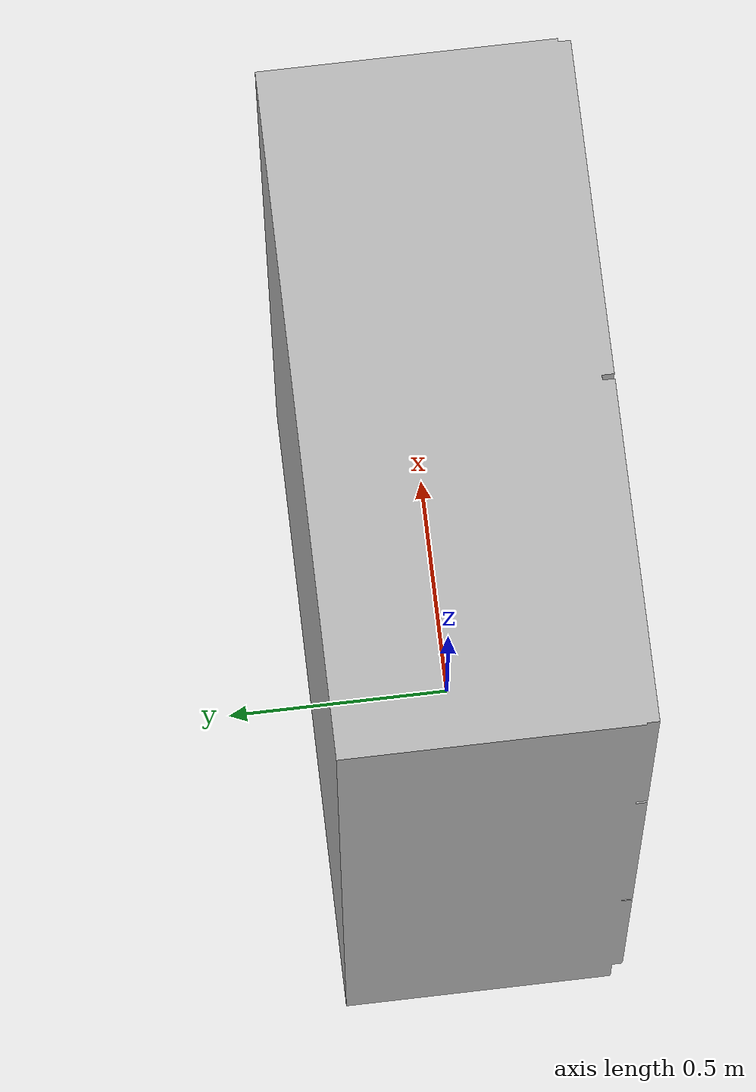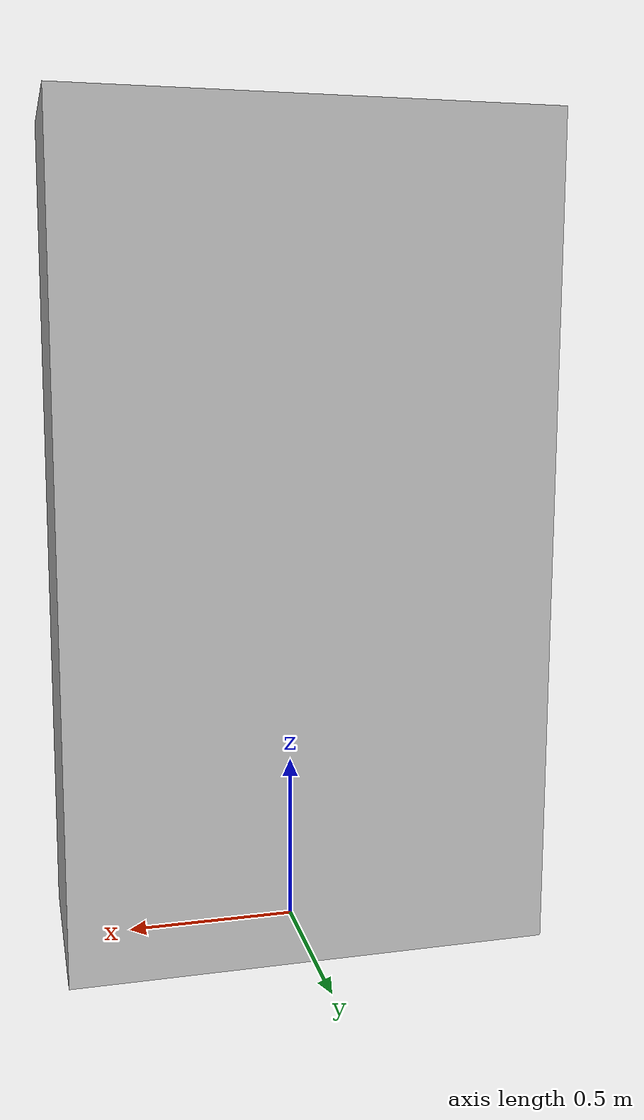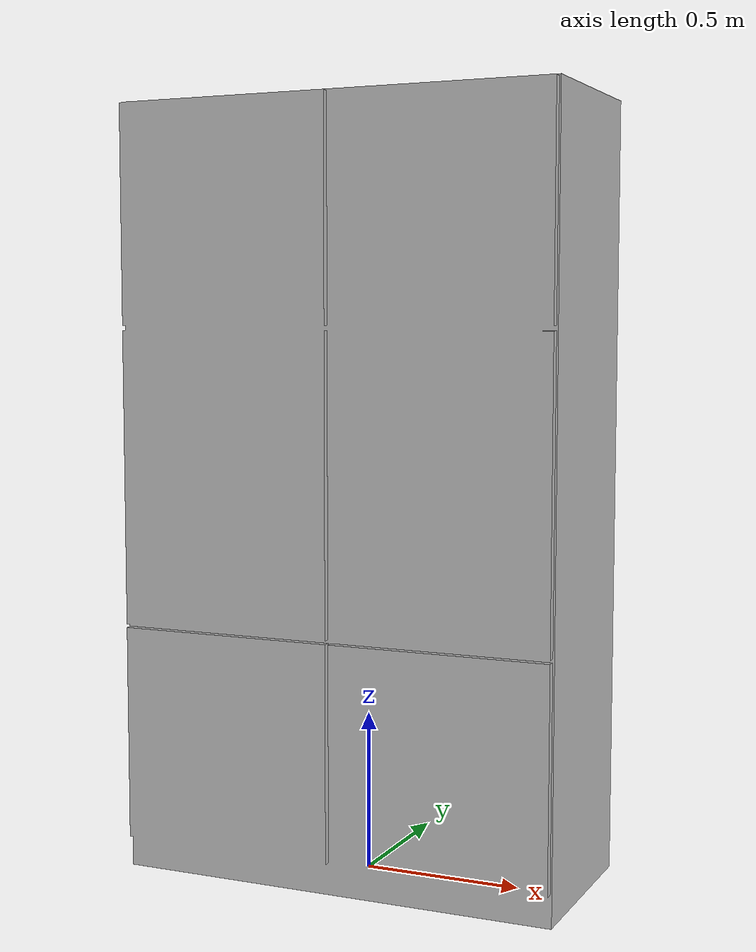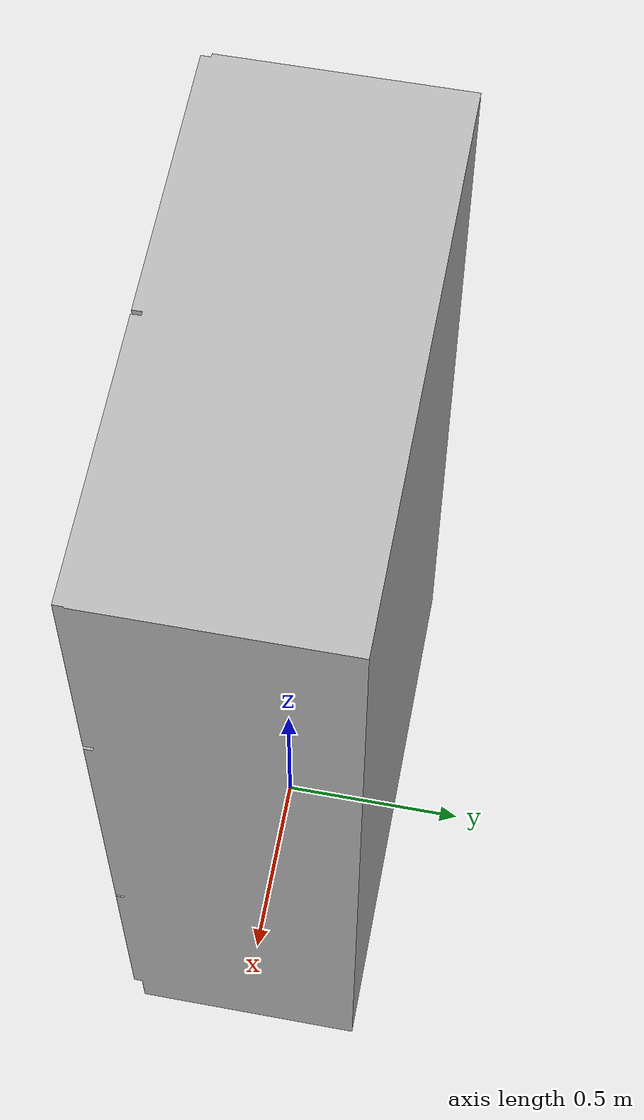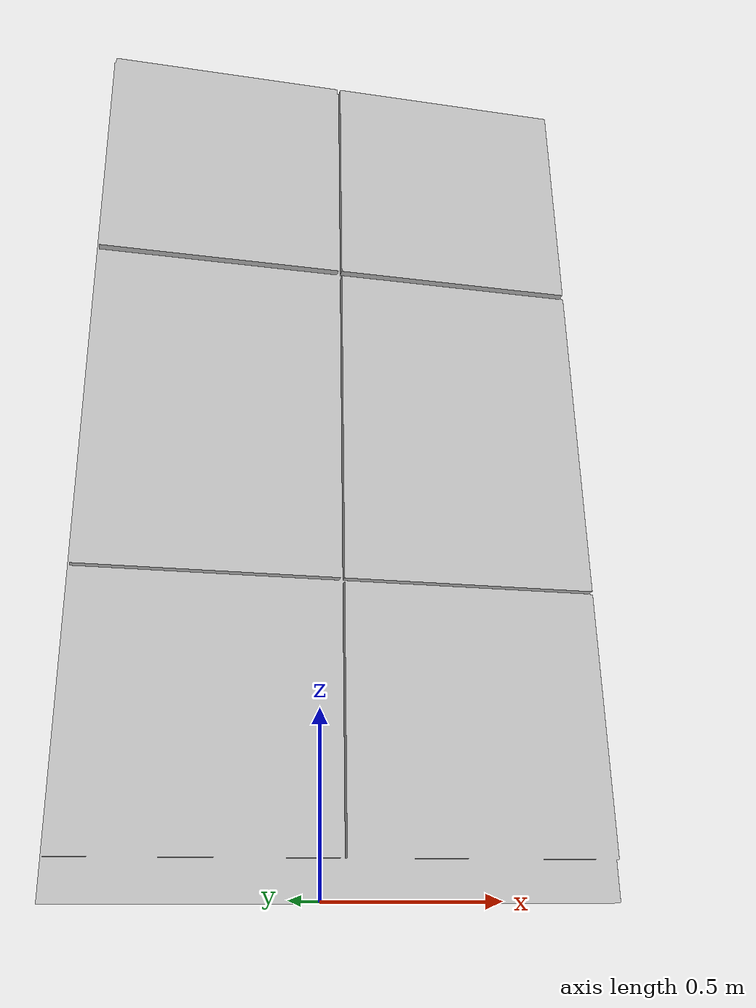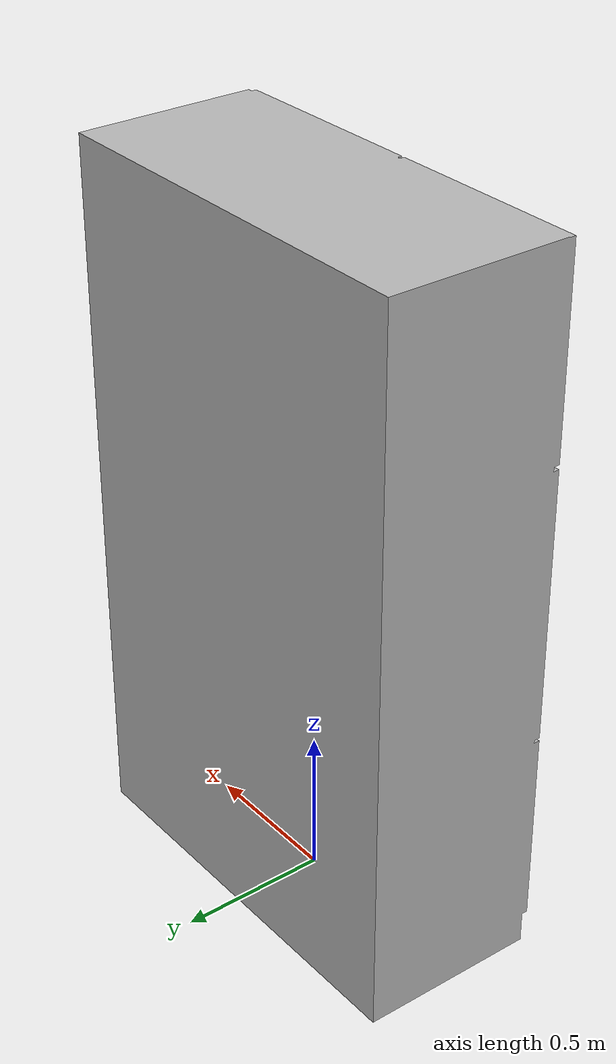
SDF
<?xml version="1.0"?>
<sdf version="1.5">
<model name="skrin_140">
	<pose>0 0 0 0 0 0</pose>
	<static>true</static>
	<link name="skrin_140_collision">
		<collision name="skrin_140_collision">
		<geometry>
			<mesh>
				<uri>model://skrin_140/meshes/model.stl</uri>
				<scale>0.001 0.001 0.001</scale>
			</mesh>
		</geometry>
		</collision>
	<visual name="skrin_140_mesh">
		<geometry>
			<mesh>
				<uri> model://skrin_140/meshes/model.stl</uri>
				<scale>0.001 0.001 0.001</scale>
			</mesh>
		</geometry>
	</visual>
</link>
</model>
</sdf>
